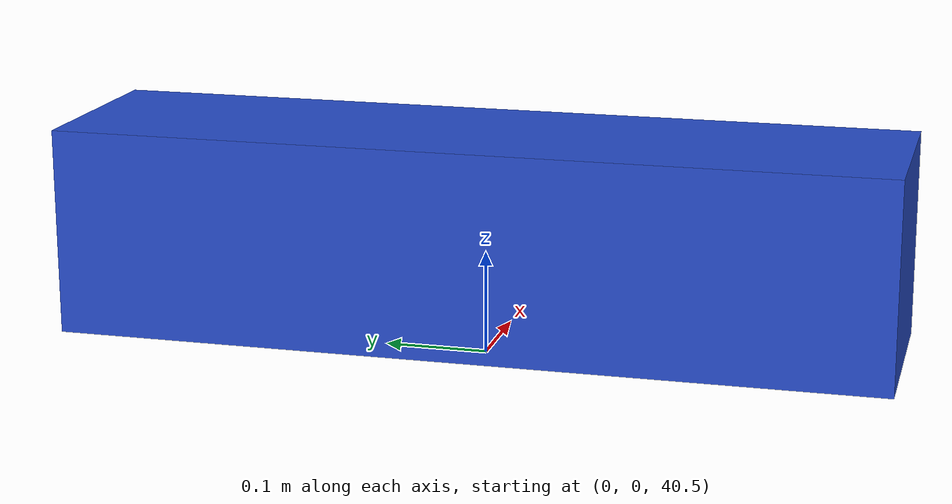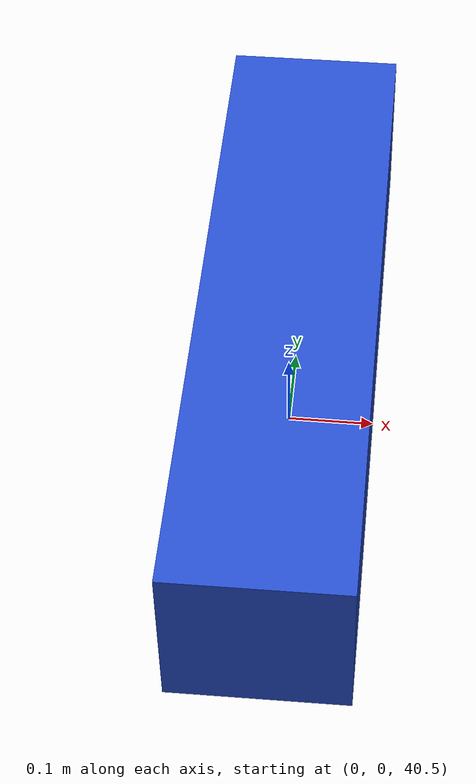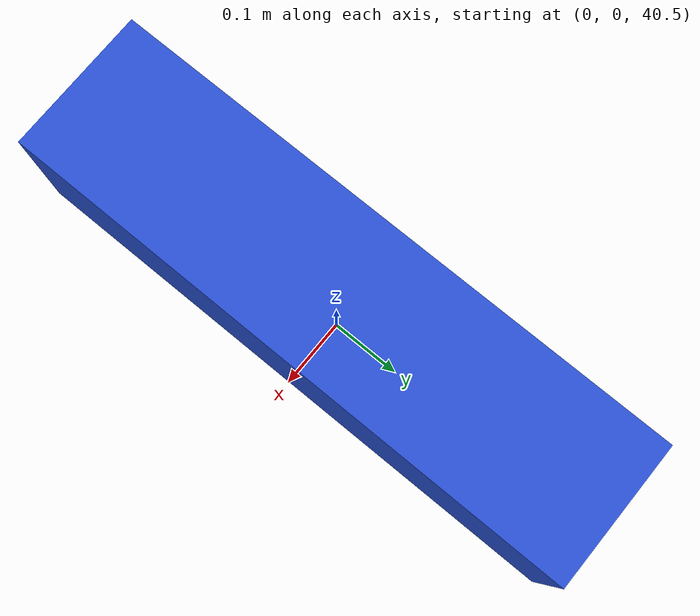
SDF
<sdf version='1.7'>
  <world name='default'>

    <gui fullscreen='0'>
      <plugin name='keyboard' filename='libKeyboardGUIPlugin.so'/>
      <camera name='user_camera'>
        <pose>0 0 32.8879 3.14159 1.57079 3.14159</pose>       <!-- 초기 시점 -->
        <view_controller>orbit</view_controller>
        <projection_type>perspective</projection_type>
      </camera>
    </gui>

    <scene>
      <ambient>0.4 0.4 0.4 1</ambient>
      <background>0.7 0.7 0.7 1</background>
      <shadows>0</shadows>
    </scene>

    <model name='top_camera'>
      <link name='top_camera_link'>
        <inertial>
          <mass>1</mass>
          <inertia>
            <ixx>0.166667</ixx>
            <ixy>0</ixy>
            <ixz>0</ixz>
            <iyy>0.166667</iyy>
            <iyz>0</iyz>
            <izz>0.166667</izz>
          </inertia>
          <pose>0 0 0 0 0 1.57</pose> <!-- 카메라 박스 위치 조정 -->
        </inertial>
        <pose>0 0 0 0 -0 0</pose>
        <gravity>1</gravity>
        <self_collide>0</self_collide>
        <kinematic>0</kinematic>
        <enable_wind>0</enable_wind>
        <visual name='visual'>
          <pose>0 0 0 0 0 1.57</pose> <!-- 카메라 박스 위치 조정 -->
          <geometry>
            <box>
              <size>0.8 0.2 0.2</size>
            </box>
          </geometry>
          <material>
            <lighting>1</lighting>
            <script>
              <uri>file://media/materials/scripts/gazebo.material</uri>
              <name>Gazebo/Blue</name>
            </script>
            <shader type='pixel'>
              <normal_map>__default__</normal_map>
            </shader>
            <ambient>0.3 0.3 0.3 1</ambient>
            <diffuse>0.7 0.7 0.7 1</diffuse>
            <specular>0.01 0.01 0.01 1</specular>
            <emissive>0 0 0 1</emissive>
          </material>
          <transparency>0</transparency>
          <cast_shadows>0</cast_shadows>
        </visual>
        <collision name='collision'>
          <laser_retro>0</laser_retro>
          <max_contacts>10</max_contacts>
          <pose>0 0 0 0 0 1.57</pose> <!-- 카메라 박스 위치 조정 -->
          <geometry>
            <box>
              <size>0.8 0.2 0.2</size>
            </box>
          </geometry>
          <surface>
            <friction>
              <ode>
                <mu>1</mu>
                <mu2>1</mu2>
                <fdir1>0 0 0</fdir1>
                <slip1>0</slip1>
                <slip2>0</slip2>
              </ode>
              <torsional>
                <coefficient>1</coefficient>
                <patch_radius>0</patch_radius>
                <surface_radius>0</surface_radius>
                <use_patch_radius>1</use_patch_radius>
                <ode>
                  <slip>0</slip>
                </ode>
              </torsional>
            </friction>
            <bounce>
              <restitution_coefficient>0</restitution_coefficient>
              <threshold>1e+06</threshold>
            </bounce>
            <contact>
              <collide_without_contact>0</collide_without_contact>
              <collide_without_contact_bitmask>1</collide_without_contact_bitmask>
              <collide_bitmask>1</collide_bitmask>
              <ode>
                <soft_cfm>0</soft_cfm>
                <soft_erp>0.2</soft_erp>
                <kp>1e+13</kp>
                <kd>1</kd>
                <max_vel>0.01</max_vel>
                <min_depth>0</min_depth>
              </ode>
              <bullet>
                <split_impulse>1</split_impulse>
                <split_impulse_penetration_threshold>-0.01</split_impulse_penetration_threshold>
                <soft_cfm>0</soft_cfm>
                <soft_erp>0.2</soft_erp>
                <kp>1e+13</kp>
                <kd>1</kd>
              </bullet>
            </contact>
          </surface>
        </collision>

        <sensor name='top_camera' type='camera'>
          <pose>0 0 0 0 0 0</pose>
          <update_rate>30</update_rate>
          <visualize>1</visualize>
          <camera name='head'>
            <horizontal_fov>1.0856</horizontal_fov>
            <image>
              <width>640</width>
              <height>480</height>
              <format>R8G8B8</format>
            </image>
            <clip>
              <near>0.03</near> <!-- 근거리 절단면 설정 -->
              <far>200</far> <!-- 원거리 절단면 설정 -->
            </clip>
            <noise>
              <type>gaussian</type>
              <mean>0</mean>
              <stddev>0.007</stddev>
            </noise>
          </camera>
          <plugin name='top_camera_driver' filename='libgazebo_ros_camera.so'>
            <alwaysOn>1</alwaysOn>
            <updateRate>0.0</updateRate>
            <cameraName>top_camera</cameraName>
            <imageTopicName>image_raw</imageTopicName>
            <cameraInfoTopicName>top_camera_info</cameraInfoTopicName>
            <frameName>camera_link</frameName>
            <hackBaseline>0.07</hackBaseline>
            <distortionK1>0.0</distortionK1>
            <distortionK2>0.0</distortionK2>
            <distortionK3>0.0</distortionK3>
            <distortionT1>0.0</distortionT1>
            <distortionT2>0.0</distortionT2>
          </plugin>
        </sensor>
      </link>
      <static>1</static>
      <allow_auto_disable>1</allow_auto_disable>
      <pose>0 0 40.619400 0 1.57 0</pose> <!-- 카메라의 위치 조정 -->
    </model>

    <model name='ground'>
      <pose>0 0 0 0 0 4.71239</pose> <!-- 트랙 위치 조정 -->
      <static>1</static>

      <link name="ground">
        <collision name="ground_collision">
          <geometry>
            <plane>
              <normal>0 0 1</normal>
              <size>86.7 56.7018</size>
            </plane>
          </geometry>
          <surface>
            <contact>
              <ode/>
            </contact>
          </surface>
        </collision>

        <visual name="ground_visual">
          <geometry>
            <plane>
              <normal>0 0 1</normal>
              <size>86.7 56.7018</size>
            </plane>
          </geometry>

          <material>
            <script>
              <uri>model://race_track/materials/scripts</uri>
              <uri>model://race_track/materials/textures</uri>
              <name>track</name>
            </script>
          </material>
        </visual>
        <self_collide>0</self_collide>
        <enable_wind>0</enable_wind>
        <kinematic>0</kinematic>
      </link>
    </model>

    <include>
      <uri>model://sun</uri>
    </include>

  </world>
</sdf>
